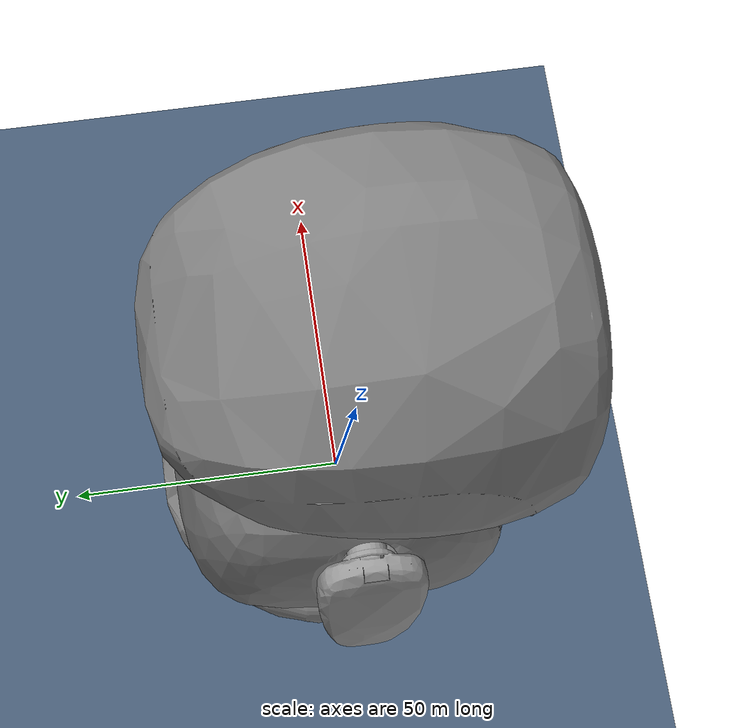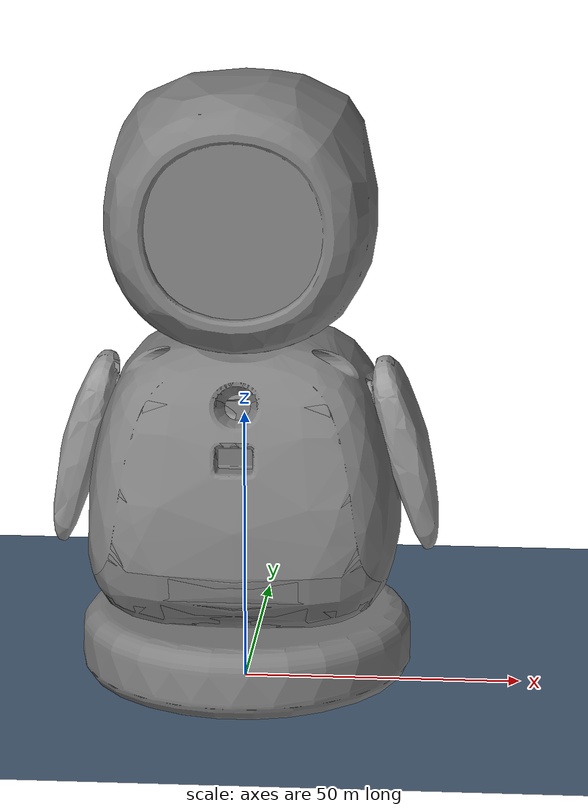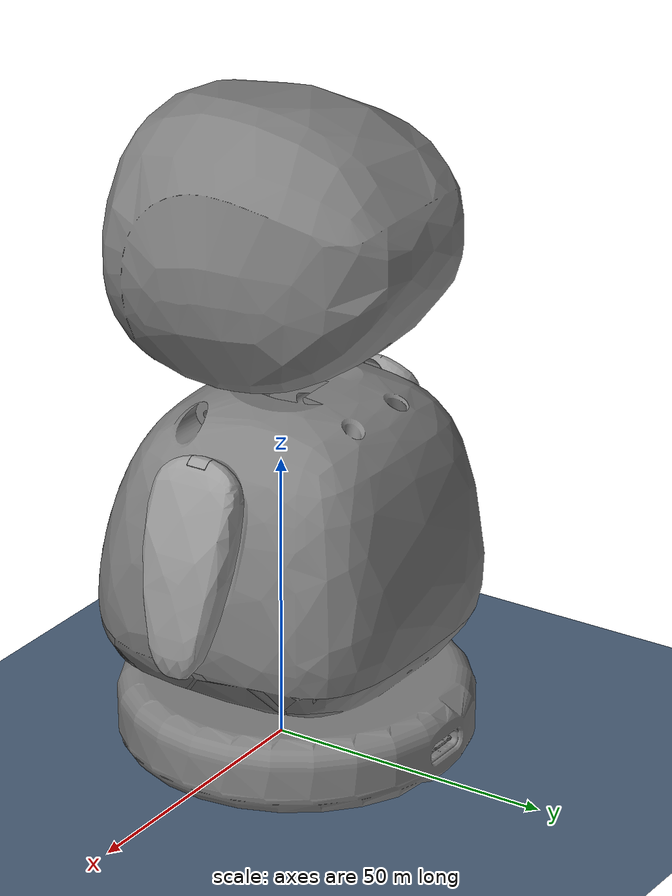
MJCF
<?xml version="1.0"?>
<mujoco model="electronbot scene">
  <include file="electronbot.xml"/>

  <visual>
    <headlight diffuse="0.8 0.8 0.8" ambient="0.4 0.4 0.4" specular="0.1 0.1 0.1"/>
    <rgba haze="0.15 0.25 0.35 1"/>
    <global azimuth="-130" elevation="-20" offwidth="960" offheight="720"/>
  </visual>

  <asset>
    <texture type="skybox" builtin="gradient" rgb1="0.3 0.5 0.7" rgb2="0 0 0" width="512" height="3072"/>
    <texture type="2d" name="groundplane" builtin="checker" mark="edge"
             rgb1="0.50 0.60 0.72" rgb2="0.06 0.13 0.22"
             markrgb="0.9 0.9 0.9" width="300" height="300"/>
    <material name="groundplane" texture="groundplane" texuniform="true" texrepeat="0.05 0.05" reflectance="0.12"/>
  </asset>

  <worldbody>
    <light pos="0 0 1.5" dir="0 0 -1" directional="true"/>
    <geom name="floor" size="0 0 0.05" type="plane" material="groundplane"/>
  </worldbody>
</mujoco>
